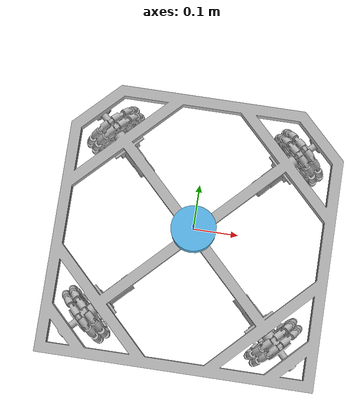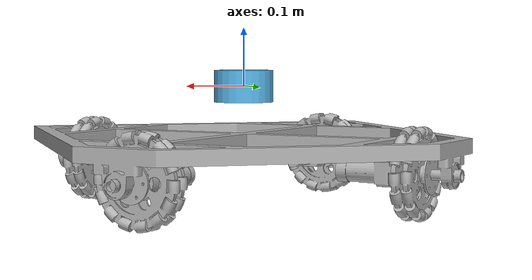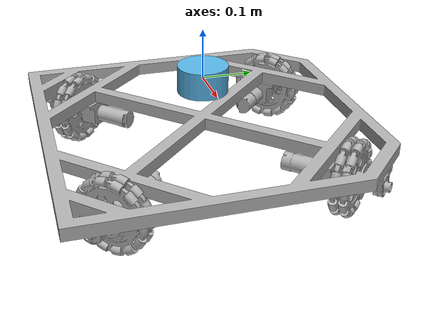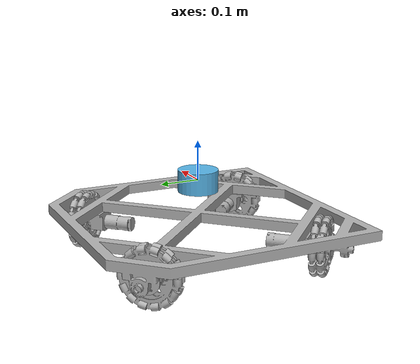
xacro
<?xml version="1.0" ?>
<robot name="bot" xmlns:xacro="http://www.ros.org/wiki/xacro">

<xacro:include filename="$(find bot_description)/urdf/materials.xacro" />
<xacro:include filename="$(find bot_description)/urdf/omnidrive.trans" />
<xacro:include filename="$(find bot_description)/urdf/omnidrive.gazebo" />
<link name="base_link">
  <inertial>
    <origin xyz="0.00024062344110785007 -0.00531572402780089 -0.10823524150435863" rpy="0 0 0"/>
    <mass value="19.729806517747196"/>
    <inertia ixx="0.871968" iyy="0.872497" izz="1.726537" ixy="0.000808" iyz="0.001686" ixz="0.000142"/>
  </inertial>
  <visual>
    <origin xyz="0 0 0" rpy="0 0 0"/>
    <geometry>
      <mesh filename="file://$(find bot_description)/meshes/base_link.stl" scale="0.001 0.001 0.001"/>
    </geometry>
    <material name="silver"/>
  </visual>
  <collision>
    <origin xyz="0 0 0" rpy="0 0 0"/>
    <geometry>
      <mesh filename="file://$(find bot_description)/meshes/base_link.stl" scale="0.001 0.001 0.001"/>
    </geometry>
  </collision>
</link>

<!-- lidar link -->
<link name="lidar_link">
  <inertial>
    <origin xyz="0 0 0" rpy="0 0 0"/>
    <mass value="0.125"/>
    <inertia ixx="0.001"  ixy="0"  ixz="0" iyy="0.001" iyz="0" izz="0.001" />
  </inertial>

  <collision>
    <origin xyz="0 0 0" rpy="0 0 0"/>
    <geometry>
       <cylinder radius="0.0508" length="0.055"/>
    </geometry>
  </collision>

  <visual>
    <origin xyz="0 0 0" rpy="0 0 0"/>
    <geometry>
       <cylinder radius="0.0508" length="0.055"/>
    </geometry>
  </visual>
</link>

<link name="WHEEL_BR_1">
  <inertial>
    <origin xyz="-3.3511498333804735e-06 -2.2205340067527057e-06 3.1009931792391754e-06" rpy="0 0 0"/>
    <mass value="2.0583849205904534"/>
    <inertia ixx="0.005254" iyy="0.005254" izz="0.00364" ixy="-0.001613" iyz="-0.0" ixz="0.0"/>
  </inertial>
  <visual>
    <origin xyz="-0.224364 0.224381 0.13668" rpy="0 0 0"/>
    <geometry>
      <mesh filename="file://$(find bot_description)/meshes/WHEEL_BR_1.stl" scale="0.001 0.001 0.001"/>
    </geometry>
    <material name="silver"/>
  </visual>
  <collision>
    <origin xyz="-0.224364 0.224381 0.13668" rpy="0 0 0"/>
    <geometry>
      <mesh filename="file://$(find bot_description)/meshes/WHEEL_BR_1.stl" scale="0.001 0.001 0.001"/>
    </geometry>
  </collision>
</link>

<link name="WHEEL_FR_1">
  <inertial>
    <origin xyz="3.0814633648901246e-06 -3.6694199714581988e-06 3.100993178739575e-06" rpy="0 0 0"/>
    <mass value="2.0583849205904534"/>
    <inertia ixx="0.005254" iyy="0.005254" izz="0.00364" ixy="0.001613" iyz="0.0" ixz="0.0"/>
  </inertial>
  <visual>
    <origin xyz="-0.224364 -0.224372 0.13668" rpy="0 0 0"/>
    <geometry>
      <mesh filename="file://$(find bot_description)/meshes/WHEEL_FR_1.stl" scale="0.001 0.001 0.001"/>
    </geometry>
    <material name="silver"/>
  </visual>
  <collision>
    <origin xyz="-0.224364 -0.224372 0.13668" rpy="0 0 0"/>
    <geometry>
      <mesh filename="file://$(find bot_description)/meshes/WHEEL_FR_1.stl" scale="0.001 0.001 0.001"/>
    </geometry>
  </collision>
</link>

<link name="_WHEEL_FL_1">
  <inertial>
    <origin xyz="-4.009711674579641e-06 -2.5619721636116477e-06 3.100993183069445e-06" rpy="0 0 0"/>
    <mass value="2.0583849205904534"/>
    <inertia ixx="0.005254" iyy="0.005254" izz="0.00364" ixy="-0.001613" iyz="-0.0" ixz="0.0"/>
  </inertial>
  <visual>
    <origin xyz="0.224388 -0.224372 0.13668" rpy="0 0 0"/>
    <geometry>
      <mesh filename="file://$(find bot_description)/meshes/_WHEEL_FL_1.stl" scale="0.001 0.001 0.001"/>
    </geometry>
    <material name="silver"/>
  </visual>
  <collision>
    <origin xyz="0.224388 -0.224372 0.13668" rpy="0 0 0"/>
    <geometry>
      <mesh filename="file://$(find bot_description)/meshes/_WHEEL_FL_1.stl" scale="0.001 0.001 0.001"/>
    </geometry>
  </collision>
</link>

<link name="_WHEEL_BL_1">
  <inertial>
    <origin xyz="2.422901528048582e-06 -3.3279818155984575e-06 3.1009931830416892e-06" rpy="0 0 0"/>
    <mass value="2.0583849205904534"/>
    <inertia ixx="0.005254" iyy="0.005254" izz="0.00364" ixy="0.001613" iyz="0.0" ixz="0.0"/>
  </inertial>
  <visual>
    <origin xyz="0.224388 0.224381 0.13668" rpy="0 0 0"/>
    <geometry>
      <mesh filename="file://$(find bot_description)/meshes/_WHEEL_BL_1.stl" scale="0.001 0.001 0.001"/>
    </geometry>
    <material name="silver"/>
  </visual>
  <collision>
    <origin xyz="0.224388 0.224381 0.13668" rpy="0 0 0"/>
    <geometry>
      <mesh filename="file://$(find bot_description)/meshes/_WHEEL_BL_1.stl" scale="0.001 0.001 0.001"/>
    </geometry>
  </collision>
</link>

<joint name="Revolute 1" type="continuous">
  <origin xyz="0.224364 -0.224381 -0.13668" rpy="0 0 0"/>
  <parent link="base_link"/>
  <child link="WHEEL_BR_1"/>
  <axis xyz="0.707107 -0.707107 -0.0"/>
</joint>

<joint name="Revolute 2" type="continuous">
  <origin xyz="0.224364 0.224372 -0.13668" rpy="0 0 0"/>
  <parent link="base_link"/>
  <child link="WHEEL_FR_1"/>
  <axis xyz="0.707107 0.707107 -0.0"/>
</joint>

<joint name="Revolute 3" type="continuous">
  <origin xyz="-0.224388 0.224372 -0.13668" rpy="0 0 0"/>
  <parent link="base_link"/>
  <child link="_WHEEL_FL_1"/>
  <axis xyz="-0.707107 0.707107 0.0"/>
</joint>

<joint name="Revolute 4" type="continuous">
  <origin xyz="-0.224388 -0.224381 -0.13668" rpy="0 0 0"/>
  <parent link="base_link"/>
  <child link="_WHEEL_BL_1"/>
  <axis xyz="-0.707107 -0.707107 0.0"/>
</joint>

<!-- lidar joint -->
<joint name="lidar_joint" type="fixed">
  <parent link="base_link"/>
  <child link="lidar_link"/>
  <origin xyz="0 0 0" rpy="0 0 0"/>
</joint>

<link name="base_footprint">
  <visual>
    <origin xyz = "0 0 0" rpy ="0 0 0" />
    <geometry>
    <box size = "0.001 0.001 0.001" />
    </geometry>
  </visual>
</link>

<joint name = "base_link_joint" type="fixed">
 <origin xyz="0 0 0" rpy="0 0 0"/>
  <parent link="base_footprint"/>
  <child link="base_link"/>
</joint>

</robot>

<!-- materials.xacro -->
<robot name="omnidrive" xmlns:xacro="http://www.ros.org/wiki/xacro" >

<material name="silver">
  <color rgba="0.700 0.700 0.700 1.000"/>
</material>

</robot>

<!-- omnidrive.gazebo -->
<robot name="omnidrive" xmlns:xacro="http://www.ros.org/wiki/xacro" >

<xacro:property name="body_color" value="Gazebo/Silver" />

<gazebo>
  <plugin name="control" filename="libgazebo_ros_control.so"/>
</gazebo>

<gazebo reference="base_link">
  <material>${body_color}</material>
  <mu1>0.2</mu1>
  <mu2>0.2</mu2>
  <self_collide>true</self_collide>
  <gravity>true</gravity>
</gazebo>

<gazebo reference="WHEEL_BR_1">
  <material>${body_color}</material>
  <mu1>0.2</mu1>
  <mu2>0.2</mu2>
  <self_collide>true</self_collide>
</gazebo>

<gazebo reference="WHEEL_FR_1">
  <material>${body_color}</material>
  <mu1>0.2</mu1>
  <mu2>0.2</mu2>
  <self_collide>true</self_collide>
</gazebo>

<gazebo reference="_WHEEL_FL_1">
  <material>${body_color}</material>
  <mu1>0.2</mu1>
  <mu2>0.2</mu2>
  <self_collide>true</self_collide>
</gazebo>

<gazebo reference="_WHEEL_BL_1">
  <material>${body_color}</material>
  <mu1>0.2</mu1>
  <mu2>0.2</mu2>
  <self_collide>true</self_collide>
</gazebo>

<!--planer move plugin-->
<gazebo>
    <plugin name="omni_controller" filename="libgazebo_ros_planar_move.so">
      <commandTopic>cmd_vel</commandTopic>
      <odometryTopic>odom</odometryTopic>
      <odometryFrame>odom</odometryFrame>
      <odometryRate>20.0</odometryRate>
      <robotBaseFrame>base_footprint</robotBaseFrame>
    </plugin>
  </gazebo>
<!-- lidar plugin -->
<gazebo reference="lidar_link">
  <sensor name="lidar" type="ray">
    <always_on>true</always_on>
    <visualize>true</visualize>
    <update_rate>5</update_rate>
    <ray>
      <scan>
        <horizontal>
          <samples>360</samples>
          <resolution>1.000000</resolution>
          <min_angle>0.000000</min_angle>
          <max_angle>6.280000</max_angle>
        </horizontal>
      </scan>
      <range>
        <min>0.120000</min>
        <max>3.5</max>
        <resolution>0.015000</resolution>
      </range>
      <noise>
        <type>gaussian</type>
        <mean>0.0</mean>
        <stddev>0.01</stddev>
      </noise>
    </ray>
    <plugin name="scan" filename="libgazebo_ros_ray_sensor.so">
      <ros>
        <remapping>~/out:=scan</remapping>
      </ros>
      <output_type>sensor_msgs/LaserScan</output_type>
      <frame_name>lidar_link</frame_name>
    </plugin>
  </sensor>
</gazebo>
</robot>
